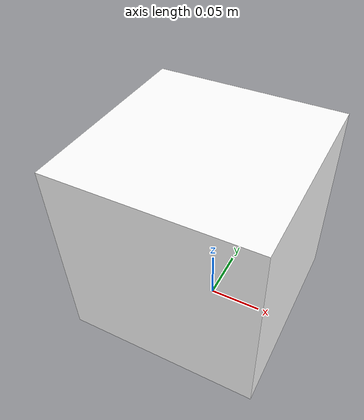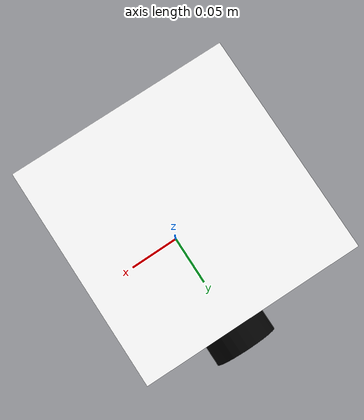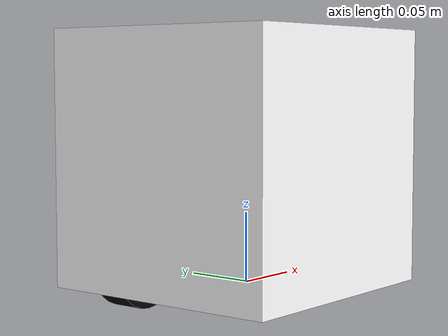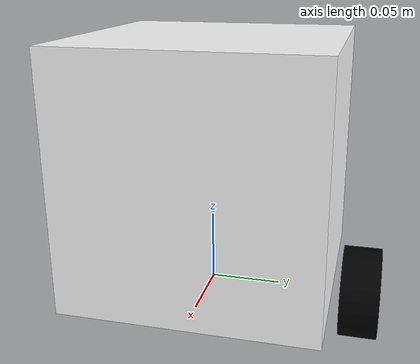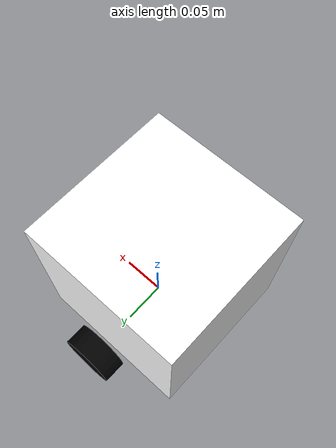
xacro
<?xml version="1.0"?>
<robot xmlns:xacro="http://www.ros.org/wiki/xacro" >

  <!-- Define material -->
  <material name="white">
    <color rgba="1 1 1 1"/>
  </material>

  <material name="orange">
    <color rgba="1 0.3 0.1 1"/>
  </material>

  <material name="blue">
    <color rgba="0.2 0.2 1 1"/>
  </material>

  <material name="black">
    <color rgba="0 0 0 1"/>
  </material>

  <!-- JOINT LIST -->
  <joint name="chassis_joint" type="fixed">
    <parent link="base_link"/>
    <child link="chassis"/>
    <origin xyz="-0.1 0 0"/>
  </joint>

  <joint name="left_wheel_joint" type="continuous">
    <parent link="base_link"/>
    <child link="left_wheel"/>
    <origin xyz="0 0.11 0" rpy="-${pi/2} 0 0"/>
    <axis xyz="0 0 1"/>
  </joint>

  <!-- LINK LIST -->
  <link name="base_link"></link>

  <link name="chassis" type="fixed">
    <visual>
      <origin xyz="0.09 0 0.09"/>
      <geometry>
	<box size="0.18 0.18 0.18"/>
      </geometry>
      <material name="white"/>
    </visual>
  </link>

  <link name="left_wheel">
    <visual>
      <geometry>
        <cylinder radius="0.0325" length="0.027"/>
      </geometry>
      <material name="black"/>
    </visual>
  </link>

</robot>
